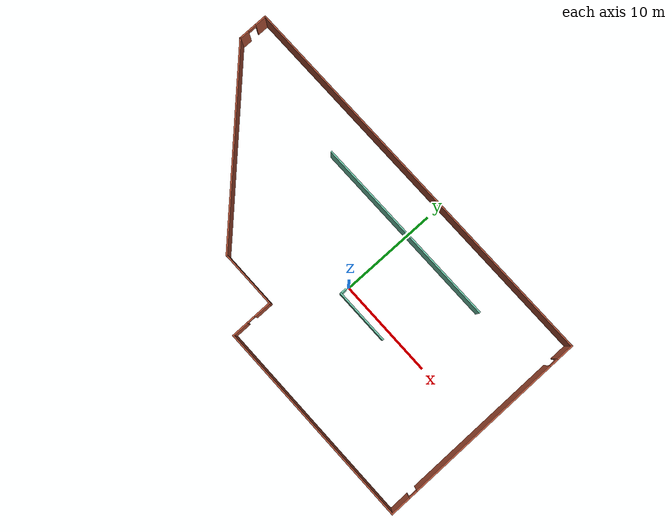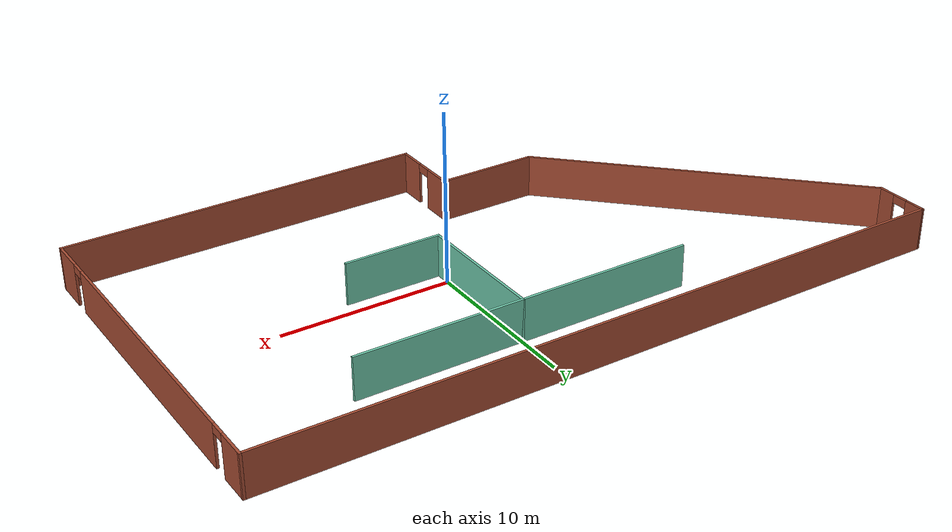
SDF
<?xml version='1.0'?>
<sdf version='1.6'>
  <model name='building'>
    <pose frame=''>-3.30827 0.268258 0 0 -0 0</pose>
    <link name='Wall_11'>
      <collision name='Wall_11_Collision'>
        <geometry>
          <box>
            <size>20 0.15 2.5</size>
          </box>
        </geometry>
        <pose frame=''>0 0 1.25 0 -0 0</pose>
      </collision>
      <visual name='Wall_11_Visual'>
        <pose frame=''>0 0 1.25 0 -0 0</pose>
        <geometry>
          <box>
            <size>20 0.15 2.5</size>
          </box>
        </geometry>
        <material>
          <script>
            <uri>file://media/materials/scripts/gazebo.material</uri>
            <name>Gazebo/Grey</name>
          </script>
          <ambient>0.435294 0.796078 0.67451 1</ambient>
        </material>
        <meta>
          <layer>0</layer>
        </meta>
      </visual>
      <pose frame=''>2.98006 6.87932 0 0 -0 0</pose>
    </link>
    <link name='Wall_14'>
      <collision name='Wall_14_Collision'>
        <geometry>
          <box>
            <size>8.25 0.15 2.5</size>
          </box>
        </geometry>
        <pose frame=''>0 0 1.25 0 -0 0</pose>
      </collision>
      <visual name='Wall_14_Visual'>
        <pose frame=''>0 0 1.25 0 -0 0</pose>
        <geometry>
          <box>
            <size>8.25 0.15 2.5</size>
          </box>
        </geometry>
        <material>
          <script>
            <uri>file://media/materials/scripts/gazebo.material</uri>
            <name>Gazebo/Grey</name>
          </script>
          <ambient>0.435294 0.796078 0.67451 1</ambient>
        </material>
        <meta>
          <layer>0</layer>
        </meta>
      </visual>
      <pose frame=''>3.2569 2.82932 0 0 -0 -1.5708</pose>
    </link>
    <link name='Wall_15'>
      <collision name='Wall_15_Collision'>
        <geometry>
          <box>
            <size>5.75 0.15 2.5</size>
          </box>
        </geometry>
        <pose frame=''>0 0 1.25 0 -0 0</pose>
      </collision>
      <visual name='Wall_15_Visual'>
        <pose frame=''>0 0 1.25 0 -0 0</pose>
        <geometry>
          <box>
            <size>5.75 0.15 2.5</size>
          </box>
        </geometry>
        <material>
          <script>
            <uri>file://media/materials/scripts/gazebo.material</uri>
            <name>Gazebo/Grey</name>
          </script>
          <ambient>0.435294 0.796078 0.67451 1</ambient>
        </material>
        <meta>
          <layer>0</layer>
        </meta>
      </visual>
      <pose frame=''>6.0569 -1.22068 0 0 -0 0</pose>
    </link>
    <link name='Wall_3'>
      <collision name='Wall_3_Collision'>
        <geometry>
          <box>
            <size>41.5 0.15 2.5</size>
          </box>
        </geometry>
        <pose frame=''>0 0 1.25 0 -0 0</pose>
      </collision>
      <visual name='Wall_3_Visual'>
        <pose frame=''>0 0 1.25 0 -0 0</pose>
        <geometry>
          <box>
            <size>41.5 0.15 2.5</size>
          </box>
        </geometry>
        <material>
          <script>
            <uri>file://media/materials/scripts/gazebo.material</uri>
            <name>Gazebo/Bricks</name>
          </script>
          <ambient>1 1 1 1</ambient>
        </material>
        <meta>
          <layer>0</layer>
        </meta>
      </visual>
      <pose frame=''>0.010345 10.9249 0 0 -0 0</pose>
    </link>
    <link name='Wall_4'>
      <pose frame=''>20.6853 -0.000125 0 0 -0 -1.5708</pose>
      <visual name='Wall_4_Visual_0'>
        <pose frame=''>-10.0794 0 1.25 0 -0 0</pose>
        <geometry>
          <box>
            <size>1.84126 0.15 2.5</size>
          </box>
        </geometry>
        <material>
          <script>
            <uri>file://media/materials/scripts/gazebo.material</uri>
            <name>Gazebo/Bricks</name>
          </script>
          <ambient>1 1 1 1</ambient>
        </material>
        <meta>
          <layer>0</layer>
        </meta>
      </visual>
      <collision name='Wall_4_Collision_0'>
        <geometry>
          <box>
            <size>1.84126 0.15 2.5</size>
          </box>
        </geometry>
        <pose frame=''>-10.0794 0 1.25 0 -0 0</pose>
      </collision>
      <visual name='Wall_4_Visual_1'>
        <pose frame=''>-0.142709 0 1.25 0 -0 0</pose>
        <geometry>
          <box>
            <size>16.2321 0.15 2.5</size>
          </box>
        </geometry>
        <material>
          <script>
            <uri>file://media/materials/scripts/gazebo.material</uri>
            <name>Gazebo/Bricks</name>
          </script>
          <ambient>1 1 1 1</ambient>
        </material>
        <meta>
          <layer>0</layer>
        </meta>
      </visual>
      <collision name='Wall_4_Collision_1'>
        <geometry>
          <box>
            <size>16.2321 0.15 2.5</size>
          </box>
        </geometry>
        <pose frame=''>-0.142709 0 1.25 0 -0 0</pose>
      </collision>
      <visual name='Wall_4_Visual_2'>
        <pose frame=''>9.93666 0 1.25 0 -0 0</pose>
        <geometry>
          <box>
            <size>2.12668 0.15 2.5</size>
          </box>
        </geometry>
        <material>
          <script>
            <uri>file://media/materials/scripts/gazebo.material</uri>
            <name>Gazebo/Bricks</name>
          </script>
          <ambient>1 1 1 1</ambient>
        </material>
        <meta>
          <layer>0</layer>
        </meta>
      </visual>
      <collision name='Wall_4_Collision_2'>
        <geometry>
          <box>
            <size>2.12668 0.15 2.5</size>
          </box>
        </geometry>
        <pose frame=''>9.93666 0 1.25 0 -0 0</pose>
      </collision>
      <visual name='Wall_4_Visual_3'>
        <pose frame=''>-8.70874 0 2.25 0 -0 0</pose>
        <geometry>
          <box>
            <size>0.9 0.15 0.5</size>
          </box>
        </geometry>
        <material>
          <script>
            <uri>file://media/materials/scripts/gazebo.material</uri>
            <name>Gazebo/Bricks</name>
          </script>
          <ambient>1 1 1 1</ambient>
        </material>
        <meta>
          <layer>0</layer>
        </meta>
      </visual>
      <collision name='Wall_4_Collision_3'>
        <geometry>
          <box>
            <size>0.9 0.15 0.5</size>
          </box>
        </geometry>
        <pose frame=''>-8.70874 0 2.25 0 -0 0</pose>
      </collision>
      <visual name='Wall_4_Visual_4'>
        <pose frame=''>8.42332 0 2.25 0 -0 0</pose>
        <geometry>
          <box>
            <size>0.9 0.15 0.5</size>
          </box>
        </geometry>
        <material>
          <script>
            <uri>file://media/materials/scripts/gazebo.material</uri>
            <name>Gazebo/Bricks</name>
          </script>
          <ambient>1 1 1 1</ambient>
        </material>
        <meta>
          <layer>0</layer>
        </meta>
      </visual>
      <collision name='Wall_4_Collision_4'>
        <geometry>
          <box>
            <size>0.9 0.15 0.5</size>
          </box>
        </geometry>
        <pose frame=''>8.42332 0 2.25 0 -0 0</pose>
      </collision>
    </link>
    <link name='Wall_5'>
      <collision name='Wall_5_Collision'>
        <geometry>
          <box>
            <size>21.25 0.15 2.5</size>
          </box>
        </geometry>
        <pose frame=''>0 0 1.25 0 -0 0</pose>
      </collision>
      <visual name='Wall_5_Visual'>
        <pose frame=''>0 0 1.25 0 -0 0</pose>
        <geometry>
          <box>
            <size>21.25 0.15 2.5</size>
          </box>
        </geometry>
        <material>
          <script>
            <uri>file://media/materials/scripts/gazebo.material</uri>
            <name>Gazebo/Bricks</name>
          </script>
          <ambient>1 1 1 1</ambient>
        </material>
        <meta>
          <layer>0</layer>
        </meta>
      </visual>
      <pose frame=''>10.1353 -10.9251 0 0 -0 3.14159</pose>
    </link>
    <link name='Wall_6'>
      <pose frame=''>-0.414655 -8.75013 0 0 -0 1.5708</pose>
      <visual name='Wall_6_Visual_0'>
        <pose frame=''>-1.38014 0 1.25 0 -0 0</pose>
        <geometry>
          <box>
            <size>1.73971 0.15 2.5</size>
          </box>
        </geometry>
        <material>
          <script>
            <uri>file://media/materials/scripts/gazebo.material</uri>
            <name>Gazebo/Bricks</name>
          </script>
          <ambient>1 1 1 1</ambient>
        </material>
        <meta>
          <layer>0</layer>
        </meta>
      </visual>
      <collision name='Wall_6_Collision_0'>
        <geometry>
          <box>
            <size>1.73971 0.15 2.5</size>
          </box>
        </geometry>
        <pose frame=''>-1.38014 0 1.25 0 -0 0</pose>
      </collision>
      <visual name='Wall_6_Visual_1'>
        <pose frame=''>1.31986 0 1.25 0 -0 0</pose>
        <geometry>
          <box>
            <size>1.86029 0.15 2.5</size>
          </box>
        </geometry>
        <material>
          <script>
            <uri>file://media/materials/scripts/gazebo.material</uri>
            <name>Gazebo/Bricks</name>
          </script>
          <ambient>1 1 1 1</ambient>
        </material>
        <meta>
          <layer>0</layer>
        </meta>
      </visual>
      <collision name='Wall_6_Collision_1'>
        <geometry>
          <box>
            <size>1.86029 0.15 2.5</size>
          </box>
        </geometry>
        <pose frame=''>1.31986 0 1.25 0 -0 0</pose>
      </collision>
      <visual name='Wall_6_Visual_2'>
        <pose frame=''>-0.060286 0 2.25 0 -0 0</pose>
        <geometry>
          <box>
            <size>0.9 0.15 0.5</size>
          </box>
        </geometry>
        <material>
          <script>
            <uri>file://media/materials/scripts/gazebo.material</uri>
            <name>Gazebo/Bricks</name>
          </script>
          <ambient>1 1 1 1</ambient>
        </material>
        <meta>
          <layer>0</layer>
        </meta>
      </visual>
      <collision name='Wall_6_Collision_2'>
        <geometry>
          <box>
            <size>0.9 0.15 0.5</size>
          </box>
        </geometry>
        <pose frame=''>-0.060286 0 2.25 0 -0 0</pose>
      </collision>
    </link>
    <link name='Wall_7'>
      <collision name='Wall_7_Collision'>
        <geometry>
          <box>
            <size>6 0.15 2.5</size>
          </box>
        </geometry>
        <pose frame=''>0 0 1.25 0 -0 0</pose>
      </collision>
      <visual name='Wall_7_Visual'>
        <pose frame=''>0 0 1.25 0 -0 0</pose>
        <geometry>
          <box>
            <size>6 0.15 2.5</size>
          </box>
        </geometry>
        <material>
          <script>
            <uri>file://media/materials/scripts/gazebo.material</uri>
            <name>Gazebo/Bricks</name>
          </script>
          <ambient>1 1 1 1</ambient>
        </material>
        <meta>
          <layer>0</layer>
        </meta>
      </visual>
      <pose frame=''>-3.33966 -6.57512 0 0 -0 3.14159</pose>
    </link>
    <link name='Wall_8'>
      <collision name='Wall_8_Collision'>
        <geometry>
          <box>
            <size>20.5 0.15 2.5</size>
          </box>
        </geometry>
        <pose frame=''>0 0 1.25 0 -0 0</pose>
      </collision>
      <visual name='Wall_8_Visual'>
        <pose frame=''>0 0 1.25 0 -0 0</pose>
        <geometry>
          <box>
            <size>20.5 0.15 2.5</size>
          </box>
        </geometry>
        <material>
          <script>
            <uri>file://media/materials/scripts/gazebo.material</uri>
            <name>Gazebo/Bricks</name>
          </script>
          <ambient>1 1 1 1</ambient>
        </material>
        <meta>
          <layer>0</layer>
        </meta>
      </visual>
      <pose frame=''>-13.4595 0.619687 0 0 -0 2.35619</pose>
    </link>
    <link name='Wall_9'>
      <pose frame=''>-20.6595 9.36969 0 0 -0 1.57413</pose>
      <visual name='Wall_9_Visual_0'>
        <pose frame=''>-1.08931 0 1.25 0 -0 0</pose>
        <geometry>
          <box>
            <size>1.08177 0.15 2.5</size>
          </box>
        </geometry>
        <material>
          <script>
            <uri>file://media/materials/scripts/gazebo.material</uri>
            <name>Gazebo/Bricks</name>
          </script>
          <ambient>1 1 1 1</ambient>
        </material>
        <meta>
          <layer>0</layer>
        </meta>
      </visual>
      <collision name='Wall_9_Collision_0'>
        <geometry>
          <box>
            <size>1.08177 0.15 2.5</size>
          </box>
        </geometry>
        <pose frame=''>-1.08931 0 1.25 0 -0 0</pose>
      </collision>
      <visual name='Wall_9_Visual_1'>
        <pose frame=''>0.990883 0 1.25 0 -0 0</pose>
        <geometry>
          <box>
            <size>1.27863 0.15 2.5</size>
          </box>
        </geometry>
        <material>
          <script>
            <uri>file://media/materials/scripts/gazebo.material</uri>
            <name>Gazebo/Bricks</name>
          </script>
          <ambient>1 1 1 1</ambient>
        </material>
        <meta>
          <layer>0</layer>
        </meta>
      </visual>
      <collision name='Wall_9_Collision_1'>
        <geometry>
          <box>
            <size>1.27863 0.15 2.5</size>
          </box>
        </geometry>
        <pose frame=''>0.990883 0 1.25 0 -0 0</pose>
      </collision>
      <visual name='Wall_9_Visual_2'>
        <pose frame=''>-0.09843 0 2.25 0 -0 0</pose>
        <geometry>
          <box>
            <size>0.9 0.15 0.5</size>
          </box>
        </geometry>
        <material>
          <script>
            <uri>file://media/materials/scripts/gazebo.material</uri>
            <name>Gazebo/Bricks</name>
          </script>
          <ambient>1 1 1 1</ambient>
        </material>
        <meta>
          <layer>0</layer>
        </meta>
      </visual>
      <collision name='Wall_9_Collision_2'>
        <geometry>
          <box>
            <size>0.9 0.15 0.5</size>
          </box>
        </geometry>
        <pose frame=''>-0.09843 0 2.25 0 -0 0</pose>
      </collision>
    </link>
    <static>1</static>
  </model>
</sdf>
